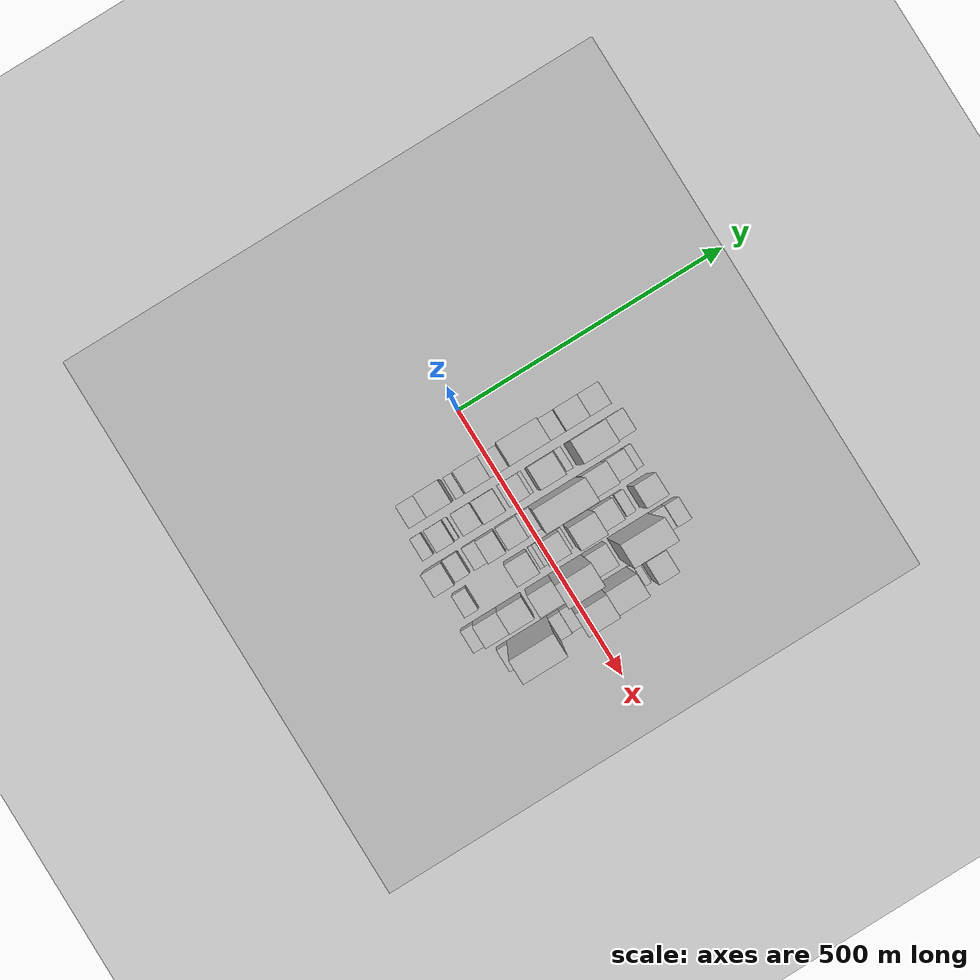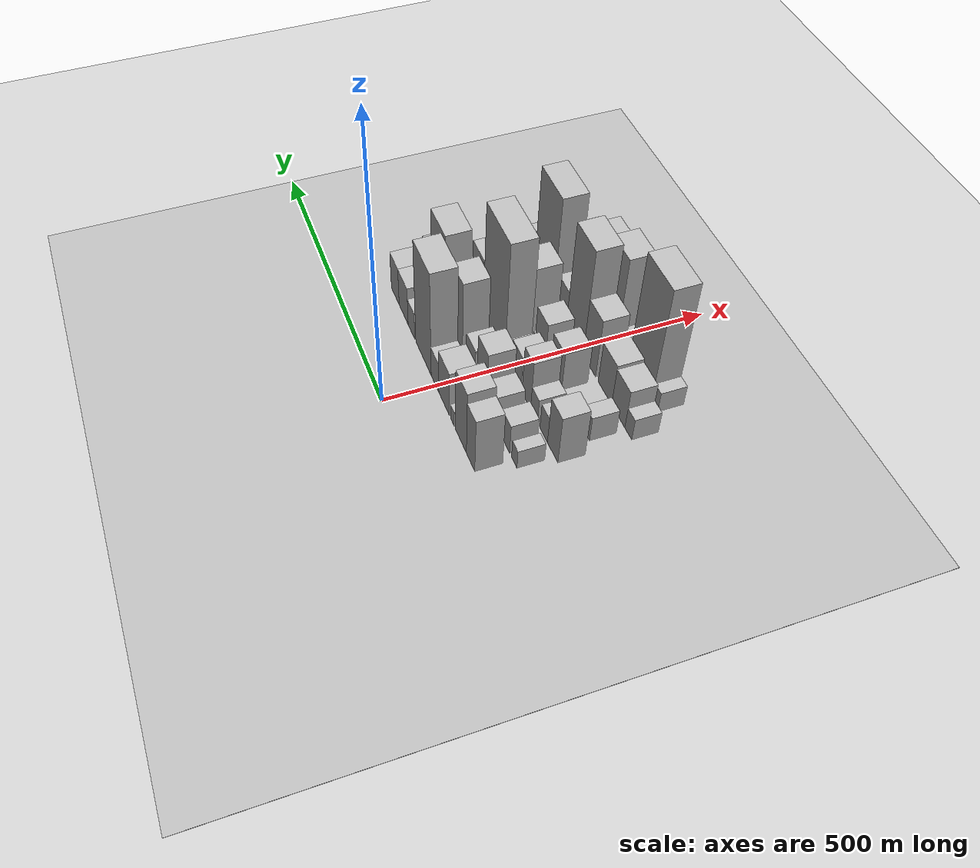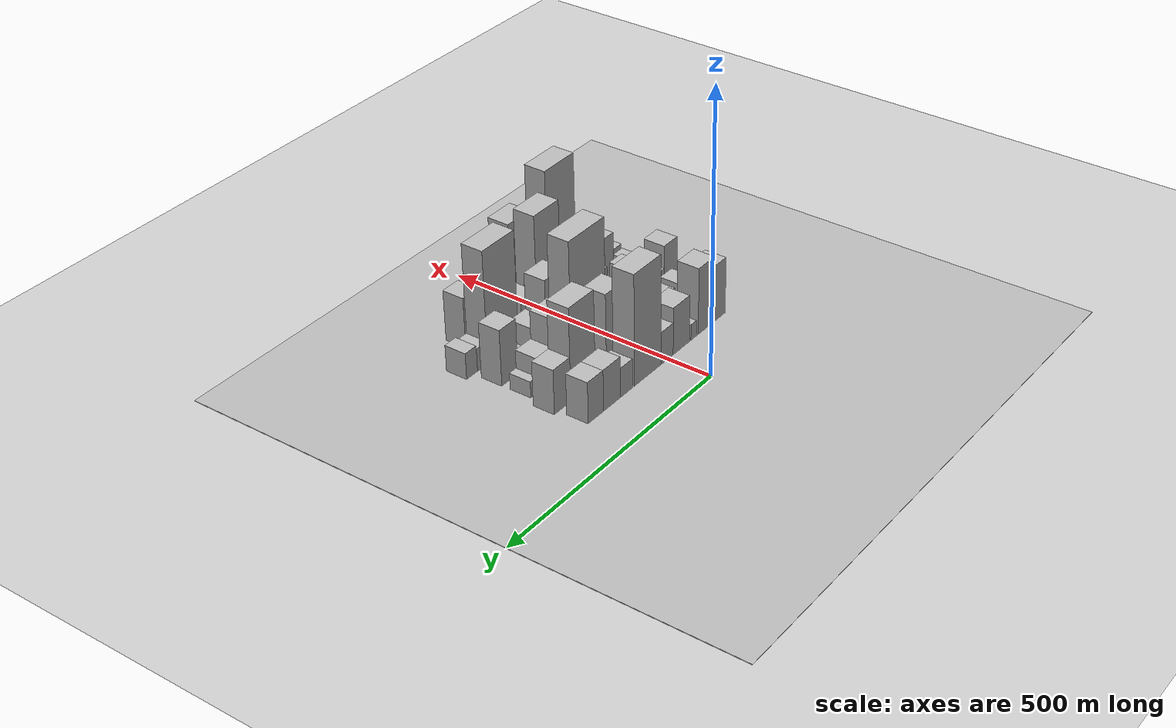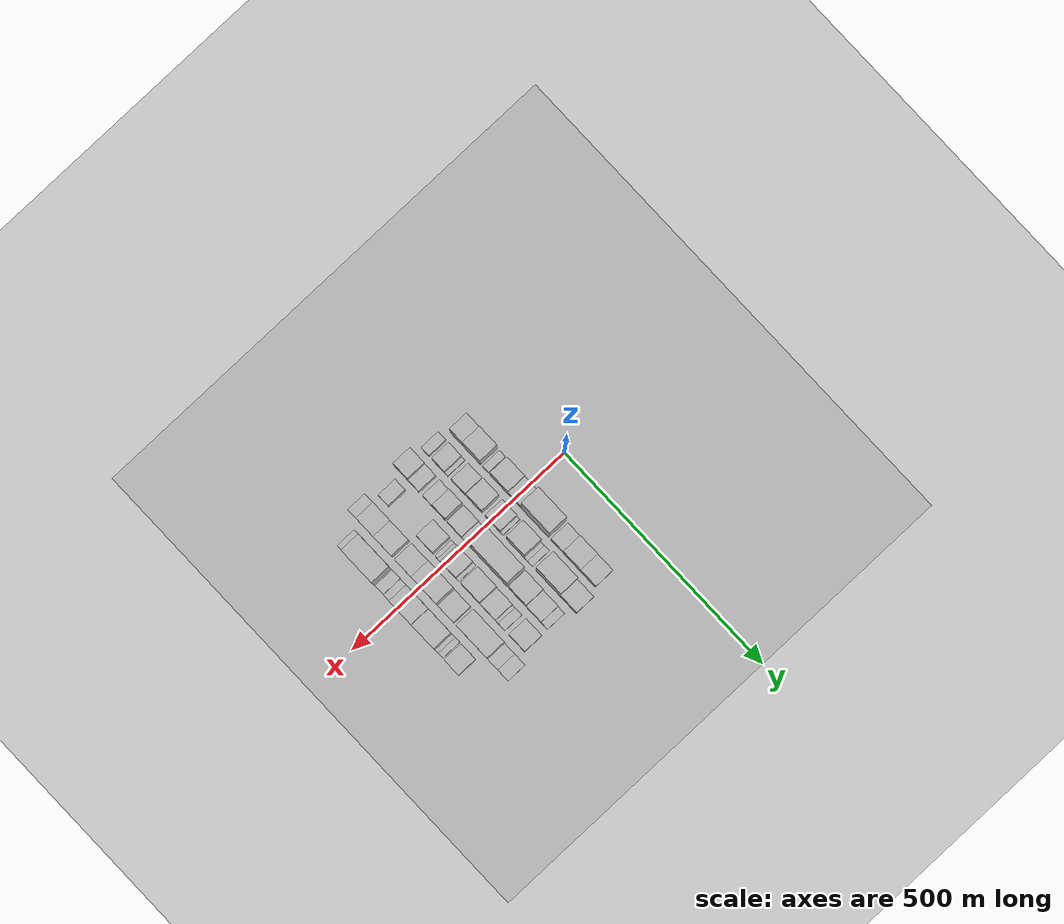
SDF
<sdf version="1.6">
 <world name="default">
  <include><name>ground_plane_1</name><uri>model://HANNAS_ground_plane</uri></include>
  <include>
   <name>ground_plane_2</name>
   <uri>model://HANNAS_ground_plane</uri>
   <pose>100 0 0  0 0 0</pose>
  </include>
  <model name="building_23">
   <static>1</static>
   <pose>100.0000 -143.0778 0 0.000000 0.000000 0.000000</pose>
   <link name="link">
    <pose>0 0 52.50 0 0 0</pose>
    <collision name="collision"><geometry><box><size>40.0000 32.5304 105.0000</size></box></geometry></collision>
    <visual name="visual">
     <cast_shadows>0</cast_shadows>
     <geometry><box><size>40.0000 32.5304 105.0000</size></box></geometry>
     <material>
      <script>
       <uri>model://HANNAS_wall/materials/scripts</uri>
       <uri>model://HANNAS_wall/materials/textures</uri>
       <name>vrc/HANNAS_wall</name>
      </script>
     </material>
    </visual>
   </link>
  </model>
  <model name="building_24">
   <static>1</static>
   <pose>100.0000 -104.7868 0 0.000000 0.000000 0.000000</pose>
   <link name="link">
    <pose>0 0 61.50 0 0 0</pose>
    <collision name="collision"><geometry><box><size>40.0000 44.0515 123.0000</size></box></geometry></collision>
    <visual name="visual">
     <cast_shadows>0</cast_shadows>
     <geometry><box><size>40.0000 44.0515 123.0000</size></box></geometry>
     <material>
      <script>
       <uri>model://HANNAS_wall/materials/scripts</uri>
       <uri>model://HANNAS_wall/materials/textures</uri>
       <name>vrc/HANNAS_wall</name>
      </script>
     </material>
    </visual>
   </link>
  </model>
  <model name="building_25">
   <static>1</static>
   <pose>100.0000 -70.0576 0 0.000000 0.000000 0.000000</pose>
   <link name="link">
    <pose>0 0 15.00 0 0 0</pose>
    <collision name="collision"><geometry><box><size>40.0000 15.4070 30.0000</size></box></geometry></collision>
    <visual name="visual">
     <cast_shadows>0</cast_shadows>
     <geometry><box><size>40.0000 15.4070 30.0000</size></box></geometry>
     <material>
      <script>
       <uri>model://HANNAS_wall/materials/scripts</uri>
       <uri>model://HANNAS_wall/materials/textures</uri>
       <name>vrc/HANNAS_wall</name>
      </script>
     </material>
    </visual>
   </link>
  </model>
  <model name="building_26">
   <static>1</static>
   <pose>100.0000 -35.9527 0 0.000000 0.000000 0.000000</pose>
   <link name="link">
    <pose>0 0 43.50 0 0 0</pose>
    <collision name="collision"><geometry><box><size>40.0000 44.8028 87.0000</size></box></geometry></collision>
    <visual name="visual">
     <cast_shadows>0</cast_shadows>
     <geometry><box><size>40.0000 44.8028 87.0000</size></box></geometry>
     <material>
      <script>
       <uri>model://HANNAS_wall/materials/scripts</uri>
       <uri>model://HANNAS_wall/materials/textures</uri>
       <name>vrc/HANNAS_wall</name>
      </script>
     </material>
    </visual>
   </link>
  </model>
  <model name="building_27">
   <static>1</static>
   <pose>100.0000 3.0839 0 0.000000 0.000000 0.000000</pose>
   <link name="link">
    <pose>0 0 30.00 0 0 0</pose>
    <collision name="collision"><geometry><box><size>40.0000 33.2703 60.0000</size></box></geometry></collision>
    <visual name="visual">
     <cast_shadows>0</cast_shadows>
     <geometry><box><size>40.0000 33.2703 60.0000</size></box></geometry>
     <material>
      <script>
       <uri>model://HANNAS_wall/materials/scripts</uri>
       <uri>model://HANNAS_wall/materials/textures</uri>
       <name>vrc/HANNAS_wall</name>
      </script>
     </material>
    </visual>
   </link>
  </model>
  <model name="building_28">
   <static>1</static>
   <pose>100.0000 54.4225 0 0.000000 0.000000 0.000000</pose>
   <link name="link">
    <pose>0 0 100.50 0 0 0</pose>
    <collision name="collision"><geometry><box><size>40.0000 69.4068 201.0000</size></box></geometry></collision>
    <visual name="visual">
     <cast_shadows>0</cast_shadows>
     <geometry><box><size>40.0000 69.4068 201.0000</size></box></geometry>
     <material>
      <script>
       <uri>model://HANNAS_wall/materials/scripts</uri>
       <uri>model://HANNAS_wall/materials/textures</uri>
       <name>vrc/HANNAS_wall</name>
      </script>
     </material>
    </visual>
   </link>
  </model>
  <model name="building_29">
   <static>1</static>
   <pose>100.0000 109.5597 0 0.000000 0.000000 0.000000</pose>
   <link name="link">
    <pose>0 0 27.00 0 0 0</pose>
    <collision name="collision"><geometry><box><size>40.0000 30.8677 54.0000</size></box></geometry></collision>
    <visual name="visual">
     <cast_shadows>0</cast_shadows>
     <geometry><box><size>40.0000 30.8677 54.0000</size></box></geometry>
     <material>
      <script>
       <uri>model://HANNAS_wall/materials/scripts</uri>
       <uri>model://HANNAS_wall/materials/textures</uri>
       <name>vrc/HANNAS_wall</name>
      </script>
     </material>
    </visual>
   </link>
  </model>
  <model name="building_30">
   <static>1</static>
   <pose>100.0000 146.6859 0 0.000000 0.000000 0.000000</pose>
   <link name="link">
    <pose>0 0 37.50 0 0 0</pose>
    <collision name="collision"><geometry><box><size>40.0000 43.3847 75.0000</size></box></geometry></collision>
    <visual name="visual">
     <cast_shadows>0</cast_shadows>
     <geometry><box><size>40.0000 43.3847 75.0000</size></box></geometry>
     <material>
      <script>
       <uri>model://HANNAS_wall/materials/scripts</uri>
       <uri>model://HANNAS_wall/materials/textures</uri>
       <name>vrc/HANNAS_wall</name>
      </script>
     </material>
    </visual>
   </link>
  </model>
  <model name="building_31">
   <static>1</static>
   <pose>100.0000 187.5784 0 0.000000 0.000000 0.000000</pose>
   <link name="link">
    <pose>0 0 37.50 0 0 0</pose>
    <collision name="collision"><geometry><box><size>40.0000 38.4004 75.0000</size></box></geometry></collision>
    <visual name="visual">
     <cast_shadows>0</cast_shadows>
     <geometry><box><size>40.0000 38.4004 75.0000</size></box></geometry>
     <material>
      <script>
       <uri>model://HANNAS_wall/materials/scripts</uri>
       <uri>model://HANNAS_wall/materials/textures</uri>
       <name>vrc/HANNAS_wall</name>
      </script>
     </material>
    </visual>
   </link>
  </model>
  <model name="building_73">
   <static>1</static>
   <pose>155.0000 -163.1323 0 0.000000 0.000000 0.000000</pose>
   <link name="link">
    <pose>0 0 18.00 0 0 0</pose>
    <collision name="collision"><geometry><box><size>40.0000 19.7537 36.0000</size></box></geometry></collision>
    <visual name="visual">
     <cast_shadows>0</cast_shadows>
     <geometry><box><size>40.0000 19.7537 36.0000</size></box></geometry>
     <material>
      <script>
       <uri>model://HANNAS_wall/materials/scripts</uri>
       <uri>model://HANNAS_wall/materials/textures</uri>
       <name>vrc/HANNAS_wall</name>
      </script>
     </material>
    </visual>
   </link>
  </model>
  <model name="building_74">
   <static>1</static>
   <pose>155.0000 -130.1298 0 0.000000 0.000000 0.000000</pose>
   <link name="link">
    <pose>0 0 28.50 0 0 0</pose>
    <collision name="collision"><geometry><box><size>40.0000 32.2513 57.0000</size></box></geometry></collision>
    <visual name="visual">
     <cast_shadows>0</cast_shadows>
     <geometry><box><size>40.0000 32.2513 57.0000</size></box></geometry>
     <material>
      <script>
       <uri>model://HANNAS_wall/materials/scripts</uri>
       <uri>model://HANNAS_wall/materials/textures</uri>
       <name>vrc/HANNAS_wall</name>
      </script>
     </material>
    </visual>
   </link>
  </model>
  <model name="building_75">
   <static>1</static>
   <pose>155.0000 -110.0264 0 0.000000 0.000000 0.000000</pose>
   <link name="link">
    <pose>0 0 9.00 0 0 0</pose>
    <collision name="collision"><geometry><box><size>40.0000 7.9556 18.0000</size></box></geometry></collision>
    <visual name="visual">
     <cast_shadows>0</cast_shadows>
     <geometry><box><size>40.0000 7.9556 18.0000</size></box></geometry>
     <material>
      <script>
       <uri>model://HANNAS_wall/materials/scripts</uri>
       <uri>model://HANNAS_wall/materials/textures</uri>
       <name>vrc/HANNAS_wall</name>
      </script>
     </material>
    </visual>
   </link>
  </model>
  <model name="building_76">
   <static>1</static>
   <pose>155.0000 -79.6390 0 0.000000 0.000000 0.000000</pose>
   <link name="link">
    <pose>0 0 30.00 0 0 0</pose>
    <collision name="collision"><geometry><box><size>40.0000 34.8190 60.0000</size></box></geometry></collision>
    <visual name="visual">
     <cast_shadows>0</cast_shadows>
     <geometry><box><size>40.0000 34.8190 60.0000</size></box></geometry>
     <material>
      <script>
       <uri>model://HANNAS_wall/materials/scripts</uri>
       <uri>model://HANNAS_wall/materials/textures</uri>
       <name>vrc/HANNAS_wall</name>
      </script>
     </material>
    </visual>
   </link>
  </model>
  <model name="building_77">
   <static>1</static>
   <pose>155.0000 -39.4959 0 0.000000 0.000000 0.000000</pose>
   <link name="link">
    <pose>0 0 52.50 0 0 0</pose>
    <collision name="collision"><geometry><box><size>40.0000 39.4673 105.0000</size></box></geometry></collision>
    <visual name="visual">
     <cast_shadows>0</cast_shadows>
     <geometry><box><size>40.0000 39.4673 105.0000</size></box></geometry>
     <material>
      <script>
       <uri>model://HANNAS_wall/materials/scripts</uri>
       <uri>model://HANNAS_wall/materials/textures</uri>
       <name>vrc/HANNAS_wall</name>
      </script>
     </material>
    </visual>
   </link>
  </model>
  <model name="building_78">
   <static>1</static>
   <pose>155.0000 6.9348 0 0.000000 0.000000 0.000000</pose>
   <link name="link">
    <pose>0 0 31.50 0 0 0</pose>
    <collision name="collision"><geometry><box><size>40.0000 37.3941 63.0000</size></box></geometry></collision>
    <visual name="visual">
     <cast_shadows>0</cast_shadows>
     <geometry><box><size>40.0000 37.3941 63.0000</size></box></geometry>
     <material>
      <script>
       <uri>model://HANNAS_wall/materials/scripts</uri>
       <uri>model://HANNAS_wall/materials/textures</uri>
       <name>vrc/HANNAS_wall</name>
      </script>
     </material>
    </visual>
   </link>
  </model>
  <model name="building_79">
   <static>1</static>
   <pose>155.0000 29.3008 0 0.000000 0.000000 0.000000</pose>
   <link name="link">
    <pose>0 0 9.00 0 0 0</pose>
    <collision name="collision"><geometry><box><size>40.0000 7.3378 18.0000</size></box></geometry></collision>
    <visual name="visual">
     <cast_shadows>0</cast_shadows>
     <geometry><box><size>40.0000 7.3378 18.0000</size></box></geometry>
     <material>
      <script>
       <uri>model://HANNAS_wall/materials/scripts</uri>
       <uri>model://HANNAS_wall/materials/textures</uri>
       <name>vrc/HANNAS_wall</name>
      </script>
     </material>
    </visual>
   </link>
  </model>
  <model name="building_80">
   <static>1</static>
   <pose>155.0000 63.5815 0 0.000000 0.000000 0.000000</pose>
   <link name="link">
    <pose>0 0 72.00 0 0 0</pose>
    <collision name="collision"><geometry><box><size>40.0000 45.2237 144.0000</size></box></geometry></collision>
    <visual name="visual">
     <cast_shadows>0</cast_shadows>
     <geometry><box><size>40.0000 45.2237 144.0000</size></box></geometry>
     <material>
      <script>
       <uri>model://HANNAS_wall/materials/scripts</uri>
       <uri>model://HANNAS_wall/materials/textures</uri>
       <name>vrc/HANNAS_wall</name>
      </script>
     </material>
    </visual>
   </link>
  </model>
  <model name="building_81">
   <static>1</static>
   <pose>155.0000 90.4466 0 0.000000 0.000000 0.000000</pose>
   <link name="link">
    <pose>0 0 9.00 0 0 0</pose>
    <collision name="collision"><geometry><box><size>40.0000 8.5064 18.0000</size></box></geometry></collision>
    <visual name="visual">
     <cast_shadows>0</cast_shadows>
     <geometry><box><size>40.0000 8.5064 18.0000</size></box></geometry>
     <material>
      <script>
       <uri>model://HANNAS_wall/materials/scripts</uri>
       <uri>model://HANNAS_wall/materials/textures</uri>
       <name>vrc/HANNAS_wall</name>
      </script>
     </material>
    </visual>
   </link>
  </model>
  <model name="building_82">
   <static>1</static>
   <pose>155.0000 100.8867 0 0.000000 0.000000 0.000000</pose>
   <link name="link">
    <pose>0 0 13.50 0 0 0</pose>
    <collision name="collision"><geometry><box><size>40.0000 12.3739 27.0000</size></box></geometry></collision>
    <visual name="visual">
     <cast_shadows>0</cast_shadows>
     <geometry><box><size>40.0000 12.3739 27.0000</size></box></geometry>
     <material>
      <script>
       <uri>model://HANNAS_wall/materials/scripts</uri>
       <uri>model://HANNAS_wall/materials/textures</uri>
       <name>vrc/HANNAS_wall</name>
      </script>
     </material>
    </visual>
   </link>
  </model>
  <model name="building_83">
   <static>1</static>
   <pose>155.0000 145.8352 0 0.000000 0.000000 0.000000</pose>
   <link name="link">
    <pose>0 0 84.00 0 0 0</pose>
    <collision name="collision"><geometry><box><size>40.0000 61.5231 168.0000</size></box></geometry></collision>
    <visual name="visual">
     <cast_shadows>0</cast_shadows>
     <geometry><box><size>40.0000 61.5231 168.0000</size></box></geometry>
     <material>
      <script>
       <uri>model://HANNAS_wall/materials/scripts</uri>
       <uri>model://HANNAS_wall/materials/textures</uri>
       <name>vrc/HANNAS_wall</name>
      </script>
     </material>
    </visual>
   </link>
  </model>
  <model name="building_84">
   <static>1</static>
   <pose>155.0000 196.9703 0 0.000000 0.000000 0.000000</pose>
   <link name="link">
    <pose>0 0 40.50 0 0 0</pose>
    <collision name="collision"><geometry><box><size>40.0000 40.7471 81.0000</size></box></geometry></collision>
    <visual name="visual">
     <cast_shadows>0</cast_shadows>
     <geometry><box><size>40.0000 40.7471 81.0000</size></box></geometry>
     <material>
      <script>
       <uri>model://HANNAS_wall/materials/scripts</uri>
       <uri>model://HANNAS_wall/materials/textures</uri>
       <name>vrc/HANNAS_wall</name>
      </script>
     </material>
    </visual>
   </link>
  </model>
  <model name="building_129">
   <static>1</static>
   <pose>210.0000 -164.7149 0 0.000000 0.000000 0.000000</pose>
   <link name="link">
    <pose>0 0 46.50 0 0 0</pose>
    <collision name="collision"><geometry><box><size>40.0000 36.3927 93.0000</size></box></geometry></collision>
    <visual name="visual">
     <cast_shadows>0</cast_shadows>
     <geometry><box><size>40.0000 36.3927 93.0000</size></box></geometry>
     <material>
      <script>
       <uri>model://HANNAS_wall/materials/scripts</uri>
       <uri>model://HANNAS_wall/materials/textures</uri>
       <name>vrc/HANNAS_wall</name>
      </script>
     </material>
    </visual>
   </link>
  </model>
  <model name="building_130">
   <static>1</static>
   <pose>210.0000 -133.1307 0 0.000000 0.000000 0.000000</pose>
   <link name="link">
    <pose>0 0 25.50 0 0 0</pose>
    <collision name="collision"><geometry><box><size>40.0000 26.7757 51.0000</size></box></geometry></collision>
    <visual name="visual">
     <cast_shadows>0</cast_shadows>
     <geometry><box><size>40.0000 26.7757 51.0000</size></box></geometry>
     <material>
      <script>
       <uri>model://HANNAS_wall/materials/scripts</uri>
       <uri>model://HANNAS_wall/materials/textures</uri>
       <name>vrc/HANNAS_wall</name>
      </script>
     </material>
    </visual>
   </link>
  </model>
  <model name="building_131">
   <static>1</static>
   <pose>210.0000 -98.0355 0 0.000000 0.000000 0.000000</pose>
   <link name="link">
    <pose>0 0 24.00 0 0 0</pose>
    <collision name="collision"><geometry><box><size>40.0000 25.4148 48.0000</size></box></geometry></collision>
    <visual name="visual">
     <cast_shadows>0</cast_shadows>
     <geometry><box><size>40.0000 25.4148 48.0000</size></box></geometry>
     <material>
      <script>
       <uri>model://HANNAS_wall/materials/scripts</uri>
       <uri>model://HANNAS_wall/materials/textures</uri>
       <name>vrc/HANNAS_wall</name>
      </script>
     </material>
    </visual>
   </link>
  </model>
  <model name="building_132">
   <static>1</static>
   <pose>210.0000 -69.2001 0 0.000000 0.000000 0.000000</pose>
   <link name="link">
    <pose>0 0 48.00 0 0 0</pose>
    <collision name="collision"><geometry><box><size>40.0000 32.2560 96.0000</size></box></geometry></collision>
    <visual name="visual">
     <cast_shadows>0</cast_shadows>
     <geometry><box><size>40.0000 32.2560 96.0000</size></box></geometry>
     <material>
      <script>
       <uri>model://HANNAS_wall/materials/scripts</uri>
       <uri>model://HANNAS_wall/materials/textures</uri>
       <name>vrc/HANNAS_wall</name>
      </script>
     </material>
    </visual>
   </link>
  </model>
  <model name="building_133">
   <static>1</static>
   <pose>210.0000 -30.4461 0 0.000000 0.000000 0.000000</pose>
   <link name="link">
    <pose>0 0 34.50 0 0 0</pose>
    <collision name="collision"><geometry><box><size>40.0000 37.2520 69.0000</size></box></geometry></collision>
    <visual name="visual">
     <cast_shadows>0</cast_shadows>
     <geometry><box><size>40.0000 37.2520 69.0000</size></box></geometry>
     <material>
      <script>
       <uri>model://HANNAS_wall/materials/scripts</uri>
       <uri>model://HANNAS_wall/materials/textures</uri>
       <name>vrc/HANNAS_wall</name>
      </script>
     </material>
    </visual>
   </link>
  </model>
  <model name="building_134">
   <static>1</static>
   <pose>210.0000 0.5493 0 0.000000 0.000000 0.000000</pose>
   <link name="link">
    <pose>0 0 21.00 0 0 0</pose>
    <collision name="collision"><geometry><box><size>40.0000 24.7389 42.0000</size></box></geometry></collision>
    <visual name="visual">
     <cast_shadows>0</cast_shadows>
     <geometry><box><size>40.0000 24.7389 42.0000</size></box></geometry>
     <material>
      <script>
       <uri>model://HANNAS_wall/materials/scripts</uri>
       <uri>model://HANNAS_wall/materials/textures</uri>
       <name>vrc/HANNAS_wall</name>
      </script>
     </material>
    </visual>
   </link>
  </model>
  <model name="building_135">
   <static>1</static>
   <pose>210.0000 57.5312 0 0.000000 0.000000 0.000000</pose>
   <link name="link">
    <pose>0 0 112.50 0 0 0</pose>
    <collision name="collision"><geometry><box><size>40.0000 89.2248 225.0000</size></box></geometry></collision>
    <visual name="visual">
     <cast_shadows>0</cast_shadows>
     <geometry><box><size>40.0000 89.2248 225.0000</size></box></geometry>
     <material>
      <script>
       <uri>model://HANNAS_wall/materials/scripts</uri>
       <uri>model://HANNAS_wall/materials/textures</uri>
       <name>vrc/HANNAS_wall</name>
      </script>
     </material>
    </visual>
   </link>
  </model>
  <model name="building_136">
   <static>1</static>
   <pose>210.0000 127.4767 0 0.000000 0.000000 0.000000</pose>
   <link name="link">
    <pose>0 0 57.00 0 0 0</pose>
    <collision name="collision"><geometry><box><size>40.0000 44.6662 114.0000</size></box></geometry></collision>
    <visual name="visual">
     <cast_shadows>0</cast_shadows>
     <geometry><box><size>40.0000 44.6662 114.0000</size></box></geometry>
     <material>
      <script>
       <uri>model://HANNAS_wall/materials/scripts</uri>
       <uri>model://HANNAS_wall/materials/textures</uri>
       <name>vrc/HANNAS_wall</name>
      </script>
     </material>
    </visual>
   </link>
  </model>
  <model name="building_137">
   <static>1</static>
   <pose>210.0000 168.5885 0 0.000000 0.000000 0.000000</pose>
   <link name="link">
    <pose>0 0 31.50 0 0 0</pose>
    <collision name="collision"><geometry><box><size>40.0000 37.5574 63.0000</size></box></geometry></collision>
    <visual name="visual">
     <cast_shadows>0</cast_shadows>
     <geometry><box><size>40.0000 37.5574 63.0000</size></box></geometry>
     <material>
      <script>
       <uri>model://HANNAS_wall/materials/scripts</uri>
       <uri>model://HANNAS_wall/materials/textures</uri>
       <name>vrc/HANNAS_wall</name>
      </script>
     </material>
    </visual>
   </link>
  </model>
  <model name="building_138">
   <static>1</static>
   <pose>210.0000 195.6005 0 0.000000 0.000000 0.000000</pose>
   <link name="link">
    <pose>0 0 15.00 0 0 0</pose>
    <collision name="collision"><geometry><box><size>40.0000 16.4666 30.0000</size></box></geometry></collision>
    <visual name="visual">
     <cast_shadows>0</cast_shadows>
     <geometry><box><size>40.0000 16.4666 30.0000</size></box></geometry>
     <material>
      <script>
       <uri>model://HANNAS_wall/materials/scripts</uri>
       <uri>model://HANNAS_wall/materials/textures</uri>
       <name>vrc/HANNAS_wall</name>
      </script>
     </material>
    </visual>
   </link>
  </model>
  <model name="building_180">
   <static>1</static>
   <pose>265.0000 -150.2910 0 0.000000 0.000000 0.000000</pose>
   <link name="link">
    <pose>0 0 24.00 0 0 0</pose>
    <collision name="collision"><geometry><box><size>40.0000 25.2929 48.0000</size></box></geometry></collision>
    <visual name="visual">
     <cast_shadows>0</cast_shadows>
     <geometry><box><size>40.0000 25.2929 48.0000</size></box></geometry>
     <material>
      <script>
       <uri>model://HANNAS_wall/materials/scripts</uri>
       <uri>model://HANNAS_wall/materials/textures</uri>
       <name>vrc/HANNAS_wall</name>
      </script>
     </material>
    </visual>
   </link>
  </model>
  <model name="building_181">
   <static>1</static>
   <pose>265.0000 -46.2908 0 0.000000 0.000000 0.000000</pose>
   <link name="link">
    <pose>0 0 37.50 0 0 0</pose>
    <collision name="collision"><geometry><box><size>40.0000 40.9025 75.0000</size></box></geometry></collision>
    <visual name="visual">
     <cast_shadows>0</cast_shadows>
     <geometry><box><size>40.0000 40.9025 75.0000</size></box></geometry>
     <material>
      <script>
       <uri>model://HANNAS_wall/materials/scripts</uri>
       <uri>model://HANNAS_wall/materials/textures</uri>
       <name>vrc/HANNAS_wall</name>
      </script>
     </material>
    </visual>
   </link>
  </model>
  <model name="building_182">
   <static>1</static>
   <pose>265.0000 -18.1072 0 0.000000 0.000000 0.000000</pose>
   <link name="link">
    <pose>0 0 7.50 0 0 0</pose>
    <collision name="collision"><geometry><box><size>40.0000 7.4647 15.0000</size></box></geometry></collision>
    <visual name="visual">
     <cast_shadows>0</cast_shadows>
     <geometry><box><size>40.0000 7.4647 15.0000</size></box></geometry>
     <material>
      <script>
       <uri>model://HANNAS_wall/materials/scripts</uri>
       <uri>model://HANNAS_wall/materials/textures</uri>
       <name>vrc/HANNAS_wall</name>
      </script>
     </material>
    </visual>
   </link>
  </model>
  <model name="building_183">
   <static>1</static>
   <pose>265.0000 -10.6464 0 0.000000 0.000000 0.000000</pose>
   <link name="link">
    <pose>0 0 9.00 0 0 0</pose>
    <collision name="collision"><geometry><box><size>40.0000 7.4568 18.0000</size></box></geometry></collision>
    <visual name="visual">
     <cast_shadows>0</cast_shadows>
     <geometry><box><size>40.0000 7.4568 18.0000</size></box></geometry>
     <material>
      <script>
       <uri>model://HANNAS_wall/materials/scripts</uri>
       <uri>model://HANNAS_wall/materials/textures</uri>
       <name>vrc/HANNAS_wall</name>
      </script>
     </material>
    </visual>
   </link>
  </model>
  <model name="building_184">
   <static>1</static>
   <pose>265.0000 12.7416 0 0.000000 0.000000 0.000000</pose>
   <link name="link">
    <pose>0 0 36.00 0 0 0</pose>
    <collision name="collision"><geometry><box><size>40.0000 39.3193 72.0000</size></box></geometry></collision>
    <visual name="visual">
     <cast_shadows>0</cast_shadows>
     <geometry><box><size>40.0000 39.3193 72.0000</size></box></geometry>
     <material>
      <script>
       <uri>model://HANNAS_wall/materials/scripts</uri>
       <uri>model://HANNAS_wall/materials/textures</uri>
       <name>vrc/HANNAS_wall</name>
      </script>
     </material>
    </visual>
   </link>
  </model>
  <model name="building_185">
   <static>1</static>
   <pose>265.0000 35.8883 0 0.000000 0.000000 0.000000</pose>
   <link name="link">
    <pose>0 0 7.50 0 0 0</pose>
    <collision name="collision"><geometry><box><size>40.0000 6.9740 15.0000</size></box></geometry></collision>
    <visual name="visual">
     <cast_shadows>0</cast_shadows>
     <geometry><box><size>40.0000 6.9740 15.0000</size></box></geometry>
     <material>
      <script>
       <uri>model://HANNAS_wall/materials/scripts</uri>
       <uri>model://HANNAS_wall/materials/textures</uri>
       <name>vrc/HANNAS_wall</name>
      </script>
     </material>
    </visual>
   </link>
  </model>
  <model name="building_186">
   <static>1</static>
   <pose>265.0000 69.0622 0 0.000000 0.000000 0.000000</pose>
   <link name="link">
    <pose>0 0 66.00 0 0 0</pose>
    <collision name="collision"><geometry><box><size>40.0000 47.3738 132.0000</size></box></geometry></collision>
    <visual name="visual">
     <cast_shadows>0</cast_shadows>
     <geometry><box><size>40.0000 47.3738 132.0000</size></box></geometry>
     <material>
      <script>
       <uri>model://HANNAS_wall/materials/scripts</uri>
       <uri>model://HANNAS_wall/materials/textures</uri>
       <name>vrc/HANNAS_wall</name>
      </script>
     </material>
    </visual>
   </link>
  </model>
  <model name="building_187">
   <static>1</static>
   <pose>265.0000 112.1017 0 0.000000 0.000000 0.000000</pose>
   <link name="link">
    <pose>0 0 33.00 0 0 0</pose>
    <collision name="collision"><geometry><box><size>40.0000 38.7052 66.0000</size></box></geometry></collision>
    <visual name="visual">
     <cast_shadows>0</cast_shadows>
     <geometry><box><size>40.0000 38.7052 66.0000</size></box></geometry>
     <material>
      <script>
       <uri>model://HANNAS_wall/materials/scripts</uri>
       <uri>model://HANNAS_wall/materials/textures</uri>
       <name>vrc/HANNAS_wall</name>
      </script>
     </material>
    </visual>
   </link>
  </model>
  <model name="building_188">
   <static>1</static>
   <pose>265.0000 134.7700 0 0.000000 0.000000 0.000000</pose>
   <link name="link">
    <pose>0 0 7.50 0 0 0</pose>
    <collision name="collision"><geometry><box><size>40.0000 6.6314 15.0000</size></box></geometry></collision>
    <visual name="visual">
     <cast_shadows>0</cast_shadows>
     <geometry><box><size>40.0000 6.6314 15.0000</size></box></geometry>
     <material>
      <script>
       <uri>model://HANNAS_wall/materials/scripts</uri>
       <uri>model://HANNAS_wall/materials/textures</uri>
       <name>vrc/HANNAS_wall</name>
      </script>
     </material>
    </visual>
   </link>
  </model>
  <model name="building_189">
   <static>1</static>
   <pose>265.0000 146.7171 0 0.000000 0.000000 0.000000</pose>
   <link name="link">
    <pose>0 0 16.50 0 0 0</pose>
    <collision name="collision"><geometry><box><size>40.0000 17.2629 33.0000</size></box></geometry></collision>
    <visual name="visual">
     <cast_shadows>0</cast_shadows>
     <geometry><box><size>40.0000 17.2629 33.0000</size></box></geometry>
     <material>
      <script>
       <uri>model://HANNAS_wall/materials/scripts</uri>
       <uri>model://HANNAS_wall/materials/textures</uri>
       <name>vrc/HANNAS_wall</name>
      </script>
     </material>
    </visual>
   </link>
  </model>
  <model name="building_190">
   <static>1</static>
   <pose>265.0000 185.2341 0 0.000000 0.000000 0.000000</pose>
   <link name="link">
    <pose>0 0 51.00 0 0 0</pose>
    <collision name="collision"><geometry><box><size>40.0000 39.7712 102.0000</size></box></geometry></collision>
    <visual name="visual">
     <cast_shadows>0</cast_shadows>
     <geometry><box><size>40.0000 39.7712 102.0000</size></box></geometry>
     <material>
      <script>
       <uri>model://HANNAS_wall/materials/scripts</uri>
       <uri>model://HANNAS_wall/materials/textures</uri>
       <name>vrc/HANNAS_wall</name>
      </script>
     </material>
    </visual>
   </link>
  </model>
  <model name="building_231">
   <static>1</static>
   <pose>320.0000 -169.4912 0 0.000000 0.000000 0.000000</pose>
   <link name="link">
    <pose>0 0 21.00 0 0 0</pose>
    <collision name="collision"><geometry><box><size>40.0000 22.1907 42.0000</size></box></geometry></collision>
    <visual name="visual">
     <cast_shadows>0</cast_shadows>
     <geometry><box><size>40.0000 22.1907 42.0000</size></box></geometry>
     <material>
      <script>
       <uri>model://HANNAS_wall/materials/scripts</uri>
       <uri>model://HANNAS_wall/materials/textures</uri>
       <name>vrc/HANNAS_wall</name>
      </script>
     </material>
    </visual>
   </link>
  </model>
  <model name="building_232">
   <static>1</static>
   <pose>320.0000 -136.7349 0 0.000000 0.000000 0.000000</pose>
   <link name="link">
    <pose>0 0 37.50 0 0 0</pose>
    <collision name="collision"><geometry><box><size>40.0000 43.3218 75.0000</size></box></geometry></collision>
    <visual name="visual">
     <cast_shadows>0</cast_shadows>
     <geometry><box><size>40.0000 43.3218 75.0000</size></box></geometry>
     <material>
      <script>
       <uri>model://HANNAS_wall/materials/scripts</uri>
       <uri>model://HANNAS_wall/materials/textures</uri>
       <name>vrc/HANNAS_wall</name>
      </script>
     </material>
    </visual>
   </link>
  </model>
  <model name="building_233">
   <static>1</static>
   <pose>320.0000 -92.2792 0 0.000000 0.000000 0.000000</pose>
   <link name="link">
    <pose>0 0 40.50 0 0 0</pose>
    <collision name="collision"><geometry><box><size>40.0000 45.5898 81.0000</size></box></geometry></collision>
    <visual name="visual">
     <cast_shadows>0</cast_shadows>
     <geometry><box><size>40.0000 45.5898 81.0000</size></box></geometry>
     <material>
      <script>
       <uri>model://HANNAS_wall/materials/scripts</uri>
       <uri>model://HANNAS_wall/materials/textures</uri>
       <name>vrc/HANNAS_wall</name>
      </script>
     </material>
    </visual>
   </link>
  </model>
  <model name="building_234">
   <static>1</static>
   <pose>320.0000 -38.4018 0 0.000000 0.000000 0.000000</pose>
   <link name="link">
    <pose>0 0 57.00 0 0 0</pose>
    <collision name="collision"><geometry><box><size>40.0000 44.1650 114.0000</size></box></geometry></collision>
    <visual name="visual">
     <cast_shadows>0</cast_shadows>
     <geometry><box><size>40.0000 44.1650 114.0000</size></box></geometry>
     <material>
      <script>
       <uri>model://HANNAS_wall/materials/scripts</uri>
       <uri>model://HANNAS_wall/materials/textures</uri>
       <name>vrc/HANNAS_wall</name>
      </script>
     </material>
    </visual>
   </link>
  </model>
  <model name="building_235">
   <static>1</static>
   <pose>320.0000 14.6640 0 0.000000 0.000000 0.000000</pose>
   <link name="link">
    <pose>0 0 102.00 0 0 0</pose>
    <collision name="collision"><geometry><box><size>40.0000 61.9665 204.0000</size></box></geometry></collision>
    <visual name="visual">
     <cast_shadows>0</cast_shadows>
     <geometry><box><size>40.0000 61.9665 204.0000</size></box></geometry>
     <material>
      <script>
       <uri>model://HANNAS_wall/materials/scripts</uri>
       <uri>model://HANNAS_wall/materials/textures</uri>
       <name>vrc/HANNAS_wall</name>
      </script>
     </material>
    </visual>
   </link>
  </model>
  <model name="building_236">
   <static>1</static>
   <pose>320.0000 65.6861 0 0.000000 0.000000 0.000000</pose>
   <link name="link">
    <pose>0 0 34.50 0 0 0</pose>
    <collision name="collision"><geometry><box><size>40.0000 40.0777 69.0000</size></box></geometry></collision>
    <visual name="visual">
     <cast_shadows>0</cast_shadows>
     <geometry><box><size>40.0000 40.0777 69.0000</size></box></geometry>
     <material>
      <script>
       <uri>model://HANNAS_wall/materials/scripts</uri>
       <uri>model://HANNAS_wall/materials/textures</uri>
       <name>vrc/HANNAS_wall</name>
      </script>
     </material>
    </visual>
   </link>
  </model>
  <model name="building_237">
   <static>1</static>
   <pose>320.0000 132.7575 0 0.000000 0.000000 0.000000</pose>
   <link name="link">
    <pose>0 0 102.00 0 0 0</pose>
    <collision name="collision"><geometry><box><size>40.0000 76.0652 204.0000</size></box></geometry></collision>
    <visual name="visual">
     <cast_shadows>0</cast_shadows>
     <geometry><box><size>40.0000 76.0652 204.0000</size></box></geometry>
     <material>
      <script>
       <uri>model://HANNAS_wall/materials/scripts</uri>
       <uri>model://HANNAS_wall/materials/textures</uri>
       <name>vrc/HANNAS_wall</name>
      </script>
     </material>
    </visual>
   </link>
  </model>
  <model name="building_238">
   <static>1</static>
   <pose>320.0000 183.3630 0 0.000000 0.000000 0.000000</pose>
   <link name="link">
    <pose>0 0 21.00 0 0 0</pose>
    <collision name="collision"><geometry><box><size>40.0000 25.1458 42.0000</size></box></geometry></collision>
    <visual name="visual">
     <cast_shadows>0</cast_shadows>
     <geometry><box><size>40.0000 25.1458 42.0000</size></box></geometry>
     <material>
      <script>
       <uri>model://HANNAS_wall/materials/scripts</uri>
       <uri>model://HANNAS_wall/materials/textures</uri>
       <name>vrc/HANNAS_wall</name>
      </script>
     </material>
    </visual>
   </link>
  </model>
  <model name="building_239">
   <static>1</static>
   <pose>320.0000 209.0054 0 0.000000 0.000000 0.000000</pose>
   <link name="link">
    <pose>0 0 24.00 0 0 0</pose>
    <collision name="collision"><geometry><box><size>40.0000 26.1390 48.0000</size></box></geometry></collision>
    <visual name="visual">
     <cast_shadows>0</cast_shadows>
     <geometry><box><size>40.0000 26.1390 48.0000</size></box></geometry>
     <material>
      <script>
       <uri>model://HANNAS_wall/materials/scripts</uri>
       <uri>model://HANNAS_wall/materials/textures</uri>
       <name>vrc/HANNAS_wall</name>
      </script>
     </material>
    </visual>
   </link>
  </model>
  <model name="building_280">
   <static>1</static>
   <pose>375.0000 -138.2084 0 0.000000 0.000000 0.000000</pose>
   <link name="link">
    <pose>0 0 19.50 0 0 0</pose>
    <collision name="collision"><geometry><box><size>40.0000 19.5291 39.0000</size></box></geometry></collision>
    <visual name="visual">
     <cast_shadows>0</cast_shadows>
     <geometry><box><size>40.0000 19.5291 39.0000</size></box></geometry>
     <material>
      <script>
       <uri>model://HANNAS_wall/materials/scripts</uri>
       <uri>model://HANNAS_wall/materials/textures</uri>
       <name>vrc/HANNAS_wall</name>
      </script>
     </material>
    </visual>
   </link>
  </model>
  <model name="building_281">
   <static>1</static>
   <pose>375.0000 -90.8601 0 0.000000 0.000000 0.000000</pose>
   <link name="link">
    <pose>0 0 109.50 0 0 0</pose>
    <collision name="collision"><geometry><box><size>40.0000 75.1675 219.0000</size></box></geometry></collision>
    <visual name="visual">
     <cast_shadows>0</cast_shadows>
     <geometry><box><size>40.0000 75.1675 219.0000</size></box></geometry>
     <material>
      <script>
       <uri>model://HANNAS_wall/materials/scripts</uri>
       <uri>model://HANNAS_wall/materials/textures</uri>
       <name>vrc/HANNAS_wall</name>
      </script>
     </material>
    </visual>
   </link>
  </model>
  <model name="building_282">
   <static>1</static>
   <pose>375.0000 -42.6901 0 0.000000 0.000000 0.000000</pose>
   <link name="link">
    <pose>0 0 21.00 0 0 0</pose>
    <collision name="collision"><geometry><box><size>40.0000 21.1724 42.0000</size></box></geometry></collision>
    <visual name="visual">
     <cast_shadows>0</cast_shadows>
     <geometry><box><size>40.0000 21.1724 42.0000</size></box></geometry>
     <material>
      <script>
       <uri>model://HANNAS_wall/materials/scripts</uri>
       <uri>model://HANNAS_wall/materials/textures</uri>
       <name>vrc/HANNAS_wall</name>
      </script>
     </material>
    </visual>
   </link>
  </model>
  <model name="building_283">
   <static>1</static>
   <pose>375.0000 -22.5904 0 0.000000 0.000000 0.000000</pose>
   <link name="link">
    <pose>0 0 16.50 0 0 0</pose>
    <collision name="collision"><geometry><box><size>40.0000 19.0269 33.0000</size></box></geometry></collision>
    <visual name="visual">
     <cast_shadows>0</cast_shadows>
     <geometry><box><size>40.0000 19.0269 33.0000</size></box></geometry>
     <material>
      <script>
       <uri>model://HANNAS_wall/materials/scripts</uri>
       <uri>model://HANNAS_wall/materials/textures</uri>
       <name>vrc/HANNAS_wall</name>
      </script>
     </material>
    </visual>
   </link>
  </model>
  <model name="building_284">
   <static>1</static>
   <pose>375.0000 14.2683 0 0.000000 0.000000 0.000000</pose>
   <link name="link">
    <pose>0 0 84.00 0 0 0</pose>
    <collision name="collision"><geometry><box><size>40.0000 54.6905 168.0000</size></box></geometry></collision>
    <visual name="visual">
     <cast_shadows>0</cast_shadows>
     <geometry><box><size>40.0000 54.6905 168.0000</size></box></geometry>
     <material>
      <script>
       <uri>model://HANNAS_wall/materials/scripts</uri>
       <uri>model://HANNAS_wall/materials/textures</uri>
       <name>vrc/HANNAS_wall</name>
      </script>
     </material>
    </visual>
   </link>
  </model>
  <model name="building_285">
   <static>1</static>
   <pose>375.0000 69.2769 0 0.000000 0.000000 0.000000</pose>
   <link name="link">
    <pose>0 0 72.00 0 0 0</pose>
    <collision name="collision"><geometry><box><size>40.0000 55.3267 144.0000</size></box></geometry></collision>
    <visual name="visual">
     <cast_shadows>0</cast_shadows>
     <geometry><box><size>40.0000 55.3267 144.0000</size></box></geometry>
     <material>
      <script>
       <uri>model://HANNAS_wall/materials/scripts</uri>
       <uri>model://HANNAS_wall/materials/textures</uri>
       <name>vrc/HANNAS_wall</name>
      </script>
     </material>
    </visual>
   </link>
  </model>
  <model name="building_286">
   <static>1</static>
   <pose>375.0000 101.0651 0 0.000000 0.000000 0.000000</pose>
   <link name="link">
    <pose>0 0 9.00 0 0 0</pose>
    <collision name="collision"><geometry><box><size>40.0000 8.2495 18.0000</size></box></geometry></collision>
    <visual name="visual">
     <cast_shadows>0</cast_shadows>
     <geometry><box><size>40.0000 8.2495 18.0000</size></box></geometry>
     <material>
      <script>
       <uri>model://HANNAS_wall/materials/scripts</uri>
       <uri>model://HANNAS_wall/materials/textures</uri>
       <name>vrc/HANNAS_wall</name>
      </script>
     </material>
    </visual>
   </link>
  </model>
  <model name="building_287">
   <static>1</static>
   <pose>375.0000 110.9428 0 0.000000 0.000000 0.000000</pose>
   <link name="link">
    <pose>0 0 12.00 0 0 0</pose>
    <collision name="collision"><geometry><box><size>40.0000 11.5060 24.0000</size></box></geometry></collision>
    <visual name="visual">
     <cast_shadows>0</cast_shadows>
     <geometry><box><size>40.0000 11.5060 24.0000</size></box></geometry>
     <material>
      <script>
       <uri>model://HANNAS_wall/materials/scripts</uri>
       <uri>model://HANNAS_wall/materials/textures</uri>
       <name>vrc/HANNAS_wall</name>
      </script>
     </material>
    </visual>
   </link>
  </model>
  <model name="building_288">
   <static>1</static>
   <pose>375.0000 139.1080 0 0.000000 0.000000 0.000000</pose>
   <link name="link">
    <pose>0 0 46.50 0 0 0</pose>
    <collision name="collision"><geometry><box><size>40.0000 36.8243 93.0000</size></box></geometry></collision>
    <visual name="visual">
     <cast_shadows>0</cast_shadows>
     <geometry><box><size>40.0000 36.8243 93.0000</size></box></geometry>
     <material>
      <script>
       <uri>model://HANNAS_wall/materials/scripts</uri>
       <uri>model://HANNAS_wall/materials/textures</uri>
       <name>vrc/HANNAS_wall</name>
      </script>
     </material>
    </visual>
   </link>
  </model>
 </world>
</sdf>
